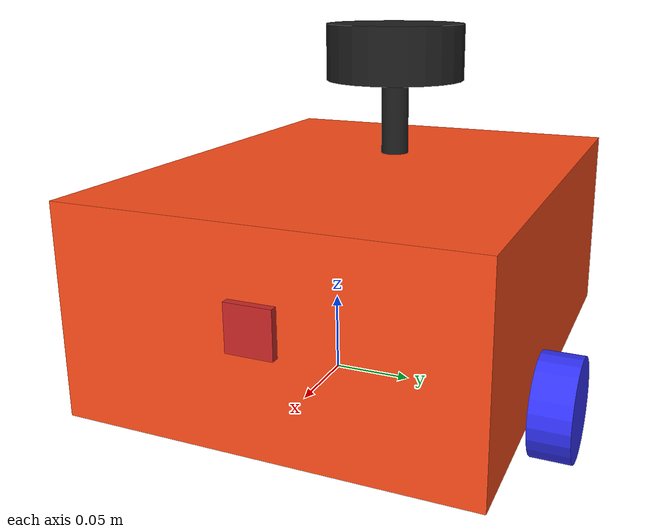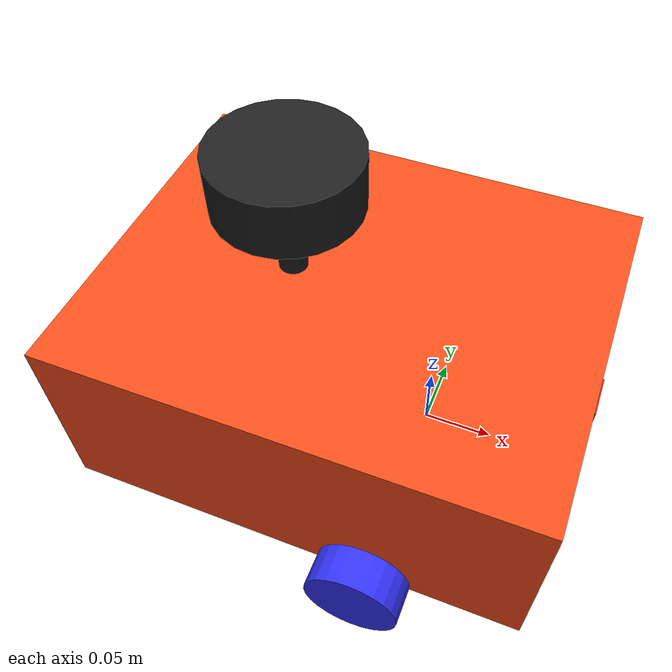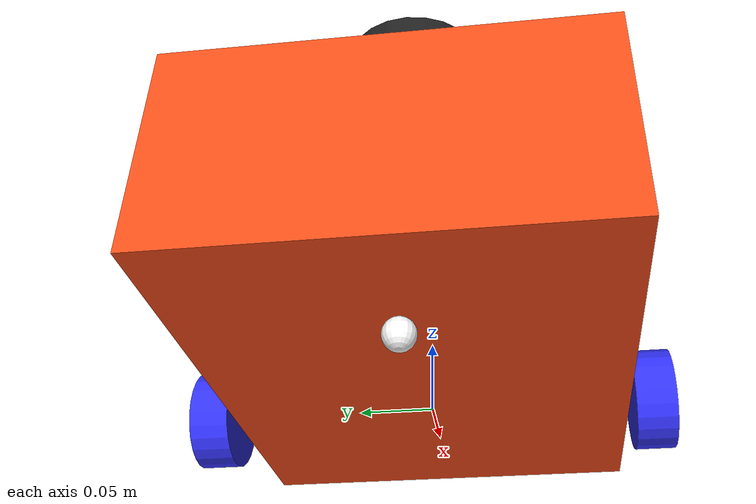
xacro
<?xml version="1.0"?>
<robot xmlns:xacro="http://www.ros.org/wiki/xacro"  name="robot">

    <xacro:arg name="use_ros2_control" default="true"/>
    <xacro:arg name="sim_mode" default="false"/>

    <xacro:include filename="rocky_core.xacro" />

    <xacro:if value="$(arg use_ros2_control)">
        <xacro:include filename="ros2_control.xacro" />
    </xacro:if>
    <xacro:unless value="$(arg use_ros2_control)">
        <xacro:include filename="gazebo_control.xacro" />
    </xacro:unless>
    <xacro:include filename="lidar.xacro" />
    <xacro:include filename="depth_camera.xacro" />
    <xacro:include filename="imu.xacro" />

</robot>

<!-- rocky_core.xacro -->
<robot xmlns:xacro="http://www.ros.org/wiki/xacro" >

    <xacro:include filename="inertial_macros.xacro"/>

    <xacro:property name="chassis_length" value="0.335"/>
    <xacro:property name="chassis_width" value="0.265"/>
    <xacro:property name="chassis_height" value="0.138"/>
    <xacro:property name="chassis_mass" value="1.0"/>
    <xacro:property name="wheel_radius" value="0.033"/>
    <xacro:property name="wheel_thickness" value="0.026"/>
    <xacro:property name="wheel_mass" value="0.05"/>
    <xacro:property name="wheel_offset_x" value="0.226"/>
    <xacro:property name="wheel_offset_y" value="0.1485"/>
    <xacro:property name="wheel_offset_z" value="0.01"/>
    <xacro:property name="caster_wheel_radius" value="0.01"/>
    <xacro:property name="caster_wheel_mass" value="0.01"/>
    <xacro:property name="caster_wheel_offset_x" value="0.075"/>
    <xacro:property name="caster_wheel_offset_z" value="${wheel_offset_z - wheel_radius + caster_wheel_radius}"/>

    <material name="white">
        <color rgba="1 1 1 1" />
    </material>

    <material name="orange">
        <color rgba="1 0.3 0.1 1"/>
    </material>

    <material name="blue">
        <color rgba="0.2 0.2 1 1"/>
    </material>

    <material name="black">
        <color rgba="0 0 0 1"/>
    </material>

    <material name="red">
        <color rgba="1 0 0 1"/>
    </material>

    <!-- BASE LINK -->

    <link name="base_link">

    </link>

    <!-- BASE_FOOTPRINT LINK -->

    <joint name="base_footprint_joint" type="fixed">
            <parent link="base_footprint"/>
            <child link="base_link"/>
            <origin xyz="0 0 0" rpy="0 0 0"/>
        </joint>

    <link name="base_footprint">
    </link>

    <!-- CHASSIS LINK -->

    <joint name="chassis_joint" type="fixed">
        <parent link="base_link"/>
        <child link="chassis"/>
        <origin xyz="${-wheel_offset_x} 0 ${-wheel_offset_z}"/>
    </joint>

    <link name="chassis">
        <visual>
            <origin xyz="${chassis_length/2} 0 ${chassis_height/2}"/>
            <geometry>
                <box size="${chassis_length} ${chassis_width} ${chassis_height}"/>
            </geometry>
            <material name="orange"/>
        </visual>
        <collision>
            <origin xyz="${chassis_length/2} 0 ${chassis_height/2}"/>
            <geometry>
                <box size="${chassis_length} ${chassis_width} ${chassis_height}"/>
            </geometry>
        </collision>
        <xacro:inertial_box mass="0.5" x="${chassis_length}" y="${chassis_width}" z="${chassis_height}">
            <origin xyz="${chassis_length/2} 0 ${chassis_height/2}" rpy="0 0 0"/>
        </xacro:inertial_box>
    </link>

    <gazebo reference="chassis">
        <material>Gazebo/Orange</material>
    </gazebo>

    <!-- LEFT WHEEL LINK -->

    <joint name="left_wheel_joint" type="continuous">
        <parent link="base_link"/>
        <child link="left_wheel"/>
        <origin xyz="0 ${wheel_offset_y} 0" rpy="-${pi/2} 0 0" />
        <axis xyz="0 0 1"/>
    </joint>

    <link name="left_wheel">
        <visual>
            <geometry>
                <cylinder radius="${wheel_radius}" length="${wheel_thickness}"/>
            </geometry>
            <material name="blue"/>
        </visual>
        <collision>
            <geometry>
                <sphere radius="${wheel_radius}"/>
            </geometry>
        </collision>
        <xacro:inertial_cylinder mass="${wheel_mass}" length="${wheel_thickness}" radius="${wheel_radius}">
            <origin xyz="0 0 0" rpy="0 0 0"/>
        </xacro:inertial_cylinder>
    </link>

    <gazebo reference="left_wheel">
        <material>Gazebo/Blue</material>
    </gazebo>

    <!-- RIGHT WHEEL LINK -->

    <joint name="right_wheel_joint" type="continuous">
        <parent link="base_link"/>
        <child link="right_wheel"/>
        <origin xyz="0 ${-wheel_offset_y} 0" rpy="${pi/2} 0 0" />
        <axis xyz="0 0 -1"/>
    </joint>

    <link name="right_wheel">
        <visual>
            <geometry>
                <cylinder radius="${wheel_radius}" length="${wheel_thickness}"/>
            </geometry>
            <material name="blue"/>
        </visual>
        <collision>
            <geometry>
                <sphere radius="${wheel_radius}"/>
            </geometry>
        </collision>
        <xacro:inertial_cylinder mass="${wheel_mass}" length="${wheel_thickness}" radius="${wheel_radius}">
            <origin xyz="0 0 0" rpy="0 0 0"/>
        </xacro:inertial_cylinder>
    </link>

    <gazebo reference="right_wheel">
        <material>Gazebo/Blue</material>
    </gazebo>

    <!-- CASTER WHEEL LINK -->

    <joint name="caster_wheel_joint" type="fixed">
        <parent link="chassis"/>
        <child link="caster_wheel"/>
        <origin xyz="${caster_wheel_offset_x} 0 ${caster_wheel_offset_z}"/>
    </joint>

    <link name="caster_wheel">
        <visual>
            <geometry>
                <sphere radius="${caster_wheel_radius}"/>
            </geometry>
            <material name="white"/>
        </visual>
        <collision>
            <geometry>
                <sphere radius="${caster_wheel_radius}"/>
            </geometry>
        </collision>
        <xacro:inertial_sphere mass="${caster_wheel_mass}" radius="${caster_wheel_radius}">
            <origin xyz="0 0 0" rpy="0 0 0"/>
        </xacro:inertial_sphere>
    </link>

    <gazebo reference="caster_wheel">
        <material>Gazebo/White</material>
        <mu1 value="0.001"/>
        <mu2 value="0.001"/>
    </gazebo>

</robot>

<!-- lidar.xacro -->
<robot xmlns:xacro="http://www.ros.org/wiki/xacro" >

    <joint name="laser_joint" type="fixed">
        <parent link="chassis"/>
        <child link="laser_frame"/>
        <origin xyz="0.122 0 0.212" rpy="0 0 0"/>
    </joint>

    <link name="laser_frame">
        <visual>
            <geometry>
                <cylinder radius="0.05" length="0.04"/>
            </geometry>
            <material name="rocky_black"/>
        </visual>
        <visual>
            <origin xyz="0 0 -0.05"/>
            <geometry>
                <cylinder radius="0.01" length="0.1"/>
            </geometry>
            <material name="rocky_black"/>
        </visual>
        <collision>
            <geometry>
                <cylinder radius="0.05" length="0.04"/>
            </geometry>
        </collision>
        <xacro:inertial_cylinder mass="0.01" length="0.04" radius="0.05">
            <origin xyz="0 0 0" rpy="0 0 0"/>
        </xacro:inertial_cylinder>
    </link>

 <gazebo reference="laser_frame">
    <material>Gazebo/Black</material>
    <sensor name="laser" type="gpu_lidar">
        <always_on>true</always_on>
        <visualize>true</visualize>
        <update_rate>10</update_rate>
        <topic>scan</topic>
        <gz_frame_id>laser_frame</gz_frame_id>
        <ray>
            <scan>
                <horizontal>
                    <samples>360</samples>
                    <resolution>1.0</resolution>
                    <min_angle>-3.14159</min_angle>
                    <max_angle>3.14159</max_angle>
                </horizontal>
            </scan>
            <range>
                <min>0.1</min>
                <max>12.0</max>
                <resolution>0.015</resolution>
            </range>
            <noise>
                <type>gaussian</type>
                <mean>0.0</mean>
                <stddev>0.01</stddev>
            </noise>
        </ray>
    </sensor>
</gazebo>
</robot>

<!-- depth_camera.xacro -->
<robot xmlns:xacro="http://www.ros.org/wiki/xacro" >

    <joint name="camera_joint" type="fixed">
            <parent link="chassis"/>
            <child link="camera_link"/>
            <origin xyz="0.335 0 0.08" rpy="0 0 0"/>
        </joint>

    <link name="camera_link">
        <visual>
            <geometry>
                <box size="0.010 0.03 0.03"/>
            </geometry>
            <material name="rocky_red"/>
        </visual>
    </link>

    <joint name="camera_optical_joint" type="fixed">
        <parent link="camera_link"/>
        <child link="camera_link_optical"/>
        <origin xyz="0 0 0" rpy="${-pi/2} 0 ${-pi/2}"/>
    </joint>

    <link name="camera_link_optical"></link>

    <gazebo reference="camera_link">
        <material>Gazebo/Red</material>

        <sensor name="camera" type="depth">
            <pose> 0 0 0 0 0 0 </pose>
            <always_on>1</always_on>
            <visualize>true</visualize>
            <update_rate>10</update_rate>
            <topic>camera</topic>
            <camera>
                <horizontal_fov>2</horizontal_fov>
                <image>
                    <format>B8G8R8</format>
                    <width>640</width>
                    <height>480</height>
                </image>
                <clip>
                    <near>0.05</near>
                    <far>8.0</far>
                </clip>
            </camera>
        </sensor>
    </gazebo>

</robot>

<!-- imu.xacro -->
<robot xmlns:xacro="http://www.ros.org/wiki/xacro">

    <joint name="imu_joint" type="fixed">
        <parent link="chassis"/>
        <child link="imu_link"/>
        <origin xyz="0.15 0 0.1" rpy="0 0 0"/>
    </joint>

    <link name="imu_link">
        <visual>
            <geometry>
                <box size="0.02 0.02 0.02"/>
            </geometry>
            <material name="black"/>
        </visual>
    </link>

    <gazebo reference="imu_link">
        <gravity>true</gravity>
        <sensor name="imu_sensor" type="imu">
            <always_on>true</always_on>
            <update_rate>100</update_rate>
            <visualize>true</visualize>

            <imu>
                <angular_velocity>
                    <x>
                        <noise type="gaussian">
                            <mean>0.0</mean>
                            <stddev>2e-4</stddev>
                        </noise>
                    </x>
                    <y>
                        <noise type="gaussian">
                            <mean>0.0</mean>
                            <stddev>2e-4</stddev>
                        </noise>
                    </y>
                    <z>
                        <noise type="gaussian">
                            <mean>0.0</mean>
                            <stddev>2e-4</stddev>
                        </noise>
                    </z>
                </angular_velocity>
                <linear_acceleration>
                    <x>
                        <noise type="gaussian">
                            <mean>0.0</mean>
                            <stddev>1.7e-2</stddev>
                        </noise>
                    </x>
                    <y>
                        <noise type="gaussian">
                            <mean>0.0</mean>
                            <stddev>1.7e-2</stddev>
                        </noise>
                    </y>
                    <z>
                        <noise type="gaussian">
                            <mean>0.0</mean>
                            <stddev>1.7e-2</stddev>
                        </noise>
                    </z>
                </linear_acceleration>
            </imu>

            <plugin filename="libgazebo_ros_imu_sensor.so" name="imu_plugin">
                <ros>
                    <remapping>~/out:=imu</remapping>
                </ros>
                <initial_orientation_as_reference>false</initial_orientation_as_reference>
            </plugin>
        </sensor>
    </gazebo>

</robot>
